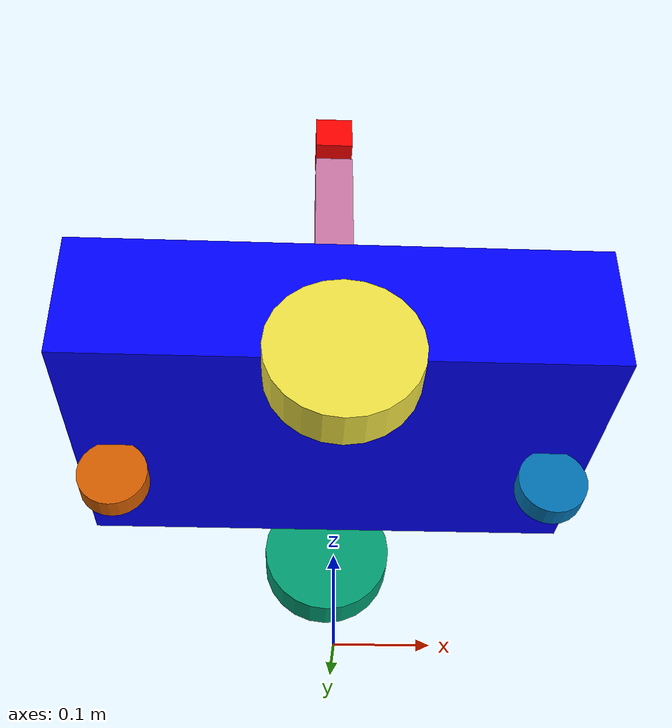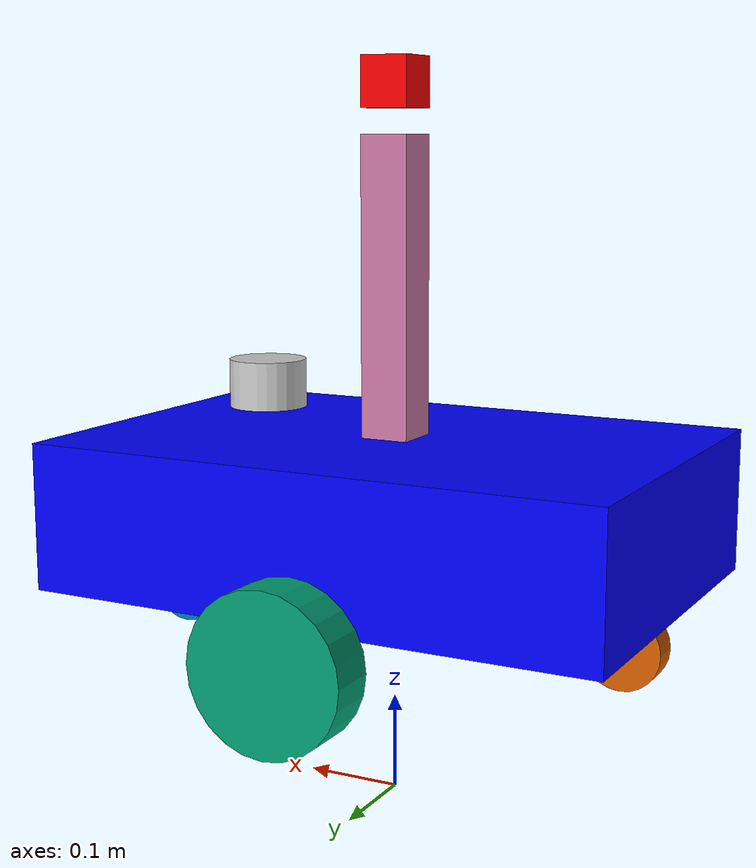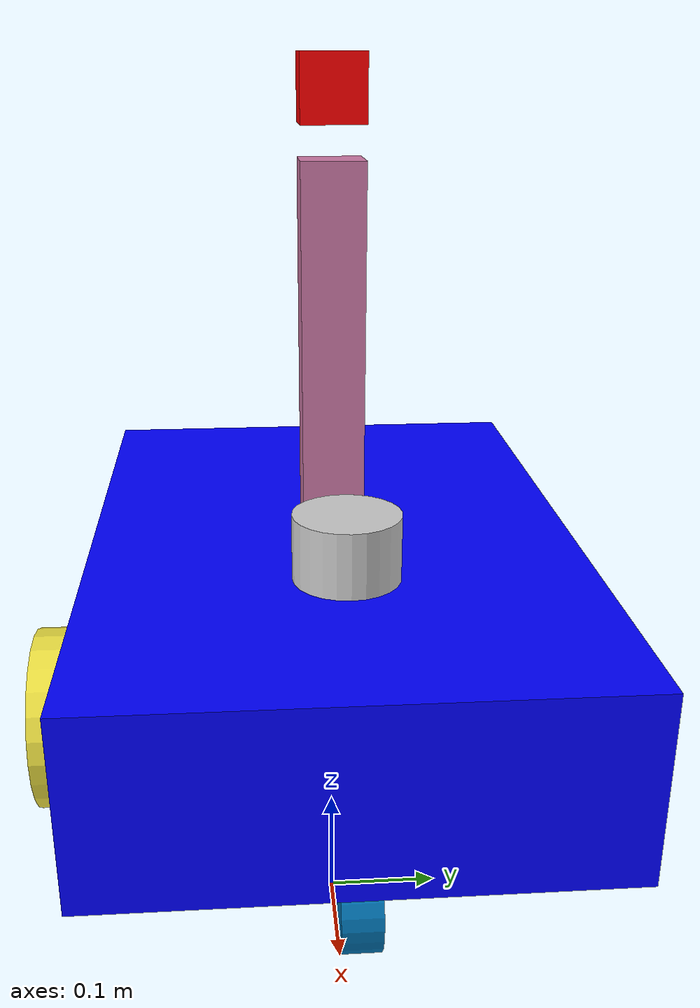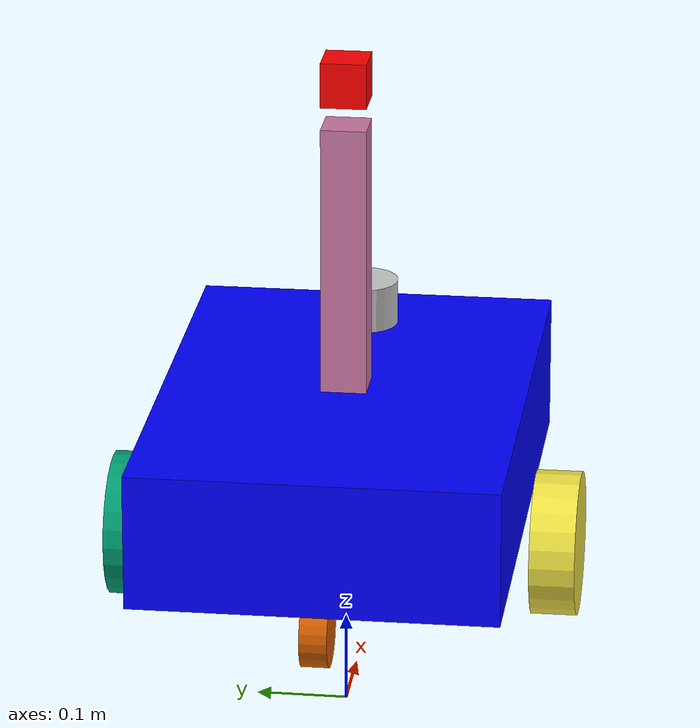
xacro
<?xml version="1.0"?>

<robot name="robot_sim"
       xmlns:xacro="http://www.ros.org/wiki/xacro">

  <!-- INCLUDE FILES                                     -->

  <xacro:include filename="wheels.xacro"/>
  <xacro:include filename="arm.xacro"/>
  <xacro:include filename="sensors.xacro"/>

  <!-- ROBOT PROPERTIES                                  -->

  <xacro:property name="body_length" value="0.60"/>
  <xacro:property name="body_width"  value="0.40"/>
  <xacro:property name="body_height" value="0.15"/>

  <!-- WORLD LINK                                        -->

  <link name="world"/>

  <joint name="world_to_base"
         type="fixed">

    <parent link="world"/>
    <child link="base_link"/>

    <origin xyz="0 0 0.30"
            rpy="0 0 0"/>

  </joint>

  <!-- BASE LINK                                         -->

  <link name="base_link">

    <visual>

      <geometry>
        <box size="${body_length}
                   ${body_width}
                   ${body_height}"/>
      </geometry>

      <material name="blue">
        <color rgba="0 0 1 1"/>
      </material>

    </visual>

    <collision>

      <geometry>
        <box size="${body_length}
                   ${body_width}
                   ${body_height}"/>
      </geometry>

    </collision>

    <inertial>

      <mass value="5.0"/>

      <origin xyz="0 0 0"/>

      <inertia
          ixx="0.10"
          iyy="0.10"
          izz="0.10"
          ixy="0"
          ixz="0"
          iyz="0"/>

    </inertial>

  </link>

  <!-- WHEELS                                            -->

  <!-- LEFT DRIVE WHEEL -->

  <xacro:wheel
      name="left_wheel"
      x="0"
      y="0.235"
      z="-0.10"
      radius="0.08"
      width="0.05"/>

  <!-- RIGHT DRIVE WHEEL -->

  <xacro:wheel
      name="right_wheel"
      x="0"
      y="-0.235"
      z="-0.10"
      radius="0.08"
      width="0.05"/>

  <!-- FRONT CASTER -->

  <xacro:wheel
      name="front_caster"
      x="0.25"
      y="0"
      z="-0.11"
      radius="0.04"
      width="0.03"/>

  <!-- REAR CASTER -->

  <xacro:wheel
      name="rear_caster"
      x="-0.25"
      y="0"
      z="-0.11"
      radius="0.04"
      width="0.03"/>

  <!-- ARM                                               -->

  <xacro:robot_arm/>

  <!-- SENSORS                                           -->

  <xacro:camera_sensor/>
  <xacro:lidar_sensor/>
  <xacro:imu_sensor/>

  <!-- GAZEBO JOINT STATE PUBLISHER                      -->

  <gazebo>

    <plugin
        filename="libignition-gazebo-joint-state-publisher-system.so"
        name="ignition::gazebo::systems::JointStatePublisher"/>

  </gazebo>

  <!-- GAZEBO POSE PUBLISHER                             -->

  <gazebo>

    <plugin
        filename="libignition-gazebo-pose-publisher-system.so"
        name="ignition::gazebo::systems::PosePublisher"/>

  </gazebo>

  <!-- ROS2 CONTROL                                      -->

  <ros2_control name="RobotSystem"
                type="system">

    <hardware>
      <plugin>gz_ros2_control/GazeboSimSystem</plugin>
    </hardware>

    <!-- LEFT WHEEL -->

    <joint name="left_wheel_joint">

      <command_interface name="velocity"/>

      <state_interface name="position"/>
      <state_interface name="velocity"/>

    </joint>

    <!-- RIGHT WHEEL -->

    <joint name="right_wheel_joint">

      <command_interface name="velocity"/>

      <state_interface name="position"/>
      <state_interface name="velocity"/>

    </joint>

    <!-- ARM -->

    <joint name="arm_joint">

      <command_interface name="position"/>

      <state_interface name="position"/>
      <state_interface name="velocity"/>

    </joint>

  </ros2_control>

  <!-- GZ ROS2 CONTROL PLUGIN                            -->

  <gazebo>

    <plugin
        filename="libgz_ros2_control-system.so"
        name="gz_ros2_control::GazeboSimROS2ControlPlugin">

      <parameters>
        /home/dhaniksha/robot_ws/src/robot_sim/config/controllers.yaml
      </parameters>

    </plugin>

  </gazebo>

</robot>

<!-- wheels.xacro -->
<robot xmlns:xacro="http://www.ros.org/wiki/xacro">

<xacro:macro name="wheel"
params="name x y z radius width">

<link name="${name}_link">

  <visual>
    <origin xyz="0 0 0" rpy="1.5708 0 0"/>
    <geometry>
      <cylinder radius="${radius}" length="${width}"/>
    </geometry>
  </visual>

  <collision>
    <origin xyz="0 0 0" rpy="1.5708 0 0"/>
    <geometry>
      <cylinder radius="${radius}" length="${width}"/>
    </geometry>
  </collision>

  <inertial>
    <mass value="0.5"/>
    <origin xyz="0 0 0"/>
    <inertia ixx="0.001" iyy="0.001" izz="0.001"
             ixy="0" ixz="0" iyz="0"/>
  </inertial>

</link>

<joint name="${name}_joint"
       type="continuous">

  <parent link="base_link"/>
  <child link="${name}_link"/>

  <origin xyz="${x} ${y} ${z}"/>

  <axis xyz="0 1 0"/>

  <limit effort="20"
         velocity="50"/>

</joint>

</xacro:macro>

</robot>

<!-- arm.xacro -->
<robot xmlns:xacro="http://www.ros.org/wiki/xacro">

<xacro:macro name="robot_arm">

<link name="arm_link">

  <visual>
    <geometry>
      <box size="0.05 0.05 0.30"/>
    </geometry>
  </visual>

  <collision>
    <geometry>
      <box size="0.05 0.05 0.30"/>
    </geometry>
  </collision>

  <inertial>
    <mass value="1"/>
    <origin xyz="0 0 0"/>
    <inertia ixx="0.01" iyy="0.01" izz="0.01"
             ixy="0" ixz="0" iyz="0"/>
  </inertial>

</link>

<joint name="arm_joint"
       type="revolute">

  <parent link="base_link"/>
  <child link="arm_link"/>

  <origin xyz="0 0 0.225"/>

  <axis xyz="0 1 0"/>

  <limit lower="-1.57"
         upper="1.57"
         effort="20"
         velocity="1"/>

</joint>

</xacro:macro>

</robot>

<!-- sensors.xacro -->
<robot xmlns:xacro="http://www.ros.org/wiki/xacro">

<xacro:macro name="camera_sensor">

<link name="camera_link">

  <visual>
    <geometry>
      <box size="0.05 0.05 0.05"/>
    </geometry>

    <material name="red">
      <color rgba="1 0 0 1"/>
    </material>

  </visual>

  <collision>
    <geometry>
      <box size="0.05 0.05 0.05"/>
    </geometry>
  </collision>

  <inertial>
    <mass value="0.2"/>

    <origin xyz="0 0 0"/>

    <inertia
      ixx="0.001"
      iyy="0.001"
      izz="0.001"
      ixy="0"
      ixz="0"
      iyz="0"/>
  </inertial>

</link>
<gazebo reference="camera_link">

  <sensor name="camera_sensor"
          type="camera">

    <always_on>true</always_on>

    <update_rate>30</update_rate>

    <topic>/camera</topic>

    <camera>

      <horizontal_fov>1.396</horizontal_fov>

      <image>
        <width>640</width>
        <height>480</height>
        <format>R8G8B8</format>
      </image>

      <clip>
        <near>0.1</near>
        <far>100</far>
      </clip>

    </camera>

  </sensor>

</gazebo>

<joint name="camera_joint"
       type="fixed">

  <parent link="arm_link"/>

  <child link="camera_link"/>

  <origin xyz="0 0 0.20"
          rpy="0 0 0"/>

</joint>

</xacro:macro>
<xacro:macro name="lidar_sensor">

<link name="lidar_link">

  <visual>
    <geometry>
      <cylinder radius="0.04"
                length="0.05"/>
    </geometry>

    <material name="silver">
      <color rgba="0.8 0.8 0.8 1"/>
    </material>

  </visual>

  <collision>
    <geometry>
      <cylinder radius="0.04"
                length="0.05"/>
    </geometry>
  </collision>

  <inertial>

    <mass value="0.2"/>

    <origin xyz="0 0 0"/>

    <inertia
      ixx="0.001"
      iyy="0.001"
      izz="0.001"
      ixy="0"
      ixz="0"
      iyz="0"/>

  </inertial>

</link>
<gazebo reference="lidar_link">

  <sensor name="lidar_sensor"
          type="gpu_lidar">

    <always_on>true</always_on>

    <update_rate>10</update_rate>

    <topic>/lidar</topic>

    <ray>

      <scan>

        <horizontal>

          <samples>720</samples>

          <resolution>1</resolution>

          <min_angle>-3.14159</min_angle>

          <max_angle>3.14159</max_angle>

        </horizontal>

      </scan>

      <range>

        <min>0.1</min>

        <max>10.0</max>

        <resolution>0.01</resolution>

      </range>

    </ray>

  </sensor>

</gazebo>

<joint name="lidar_joint"
       type="fixed">

  <parent link="base_link"/>

  <child link="lidar_link"/>

  <origin xyz="0.15 0 0.12"
          rpy="0 0 0"/>

</joint>

</xacro:macro>
<xacro:macro name="imu_sensor">

<link name="imu_link">

  <visual>
    <geometry>
      <box size="0.03 0.03 0.03"/>
    </geometry>

    <material name="yellow">
      <color rgba="1 1 0 1"/>
    </material>
  </visual>

  <collision>
    <geometry>
      <box size="0.03 0.03 0.03"/>
    </geometry>
  </collision>

  <inertial>
    <mass value="0.05"/>

    <origin xyz="0 0 0"/>

    <inertia
      ixx="0.0001"
      iyy="0.0001"
      izz="0.0001"
      ixy="0"
      ixz="0"
      iyz="0"/>
  </inertial>

</link>
<gazebo reference="imu_link">

  <sensor name="imu_sensor"
          type="imu">

    <always_on>true</always_on>

    <update_rate>100</update_rate>
    <visualize>true</visualize>
    <topic>/imu</topic>

  </sensor>

</gazebo>

<joint name="imu_joint"
       type="fixed">

  <parent link="base_link"/>

  <child link="imu_link"/>

  <origin xyz="0 0 0.08"
          rpy="0 0 0"/>

</joint>

</xacro:macro>
</robot>
